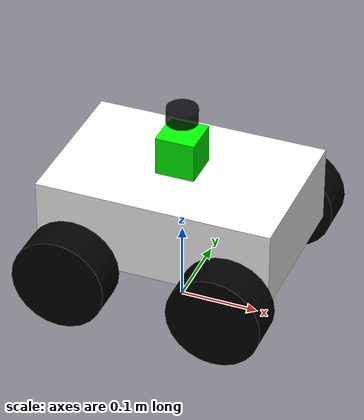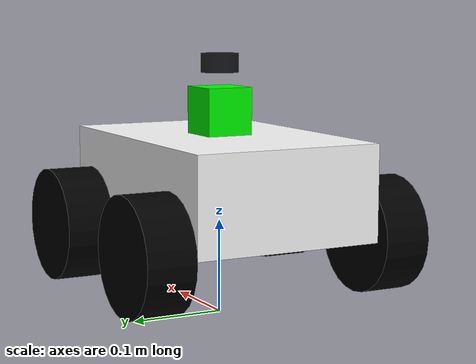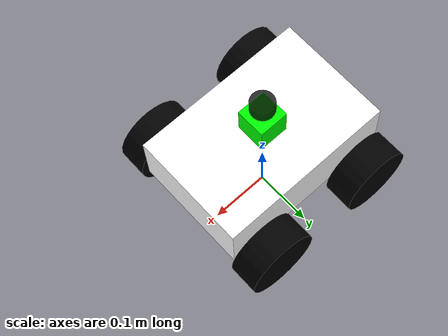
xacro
<?xml version="1.0"?>

<robot name="robot" xmlns:xacro="http://www.ros.org/wiki/xacro">
    <xacro:include filename="$(find lft_simulation)/urdf/common_inertia.xacro" />
    <xacro:include filename="$(find lft_simulation)/urdf/plugins/gazebo_sensor_plugin.xacro" />

    <xacro:gazebo_sensor_plugin />

    <xacro:property name="length_wheel" value="0.05" />
    <xacro:property name="radius_wheel" value="0.06" />
    <xacro:property name="PI" value="3.1415926"/>
    <xacro:macro name="default_inertial" params="mass">
        <inertial>
            <mass value="${mass}" />
            <inertia ixx="0.01" ixy="0.0" ixz="0.0"
                    iyy="0.01" iyz="0.0" izz="0.01" />
        </inertial>
    </xacro:macro>

    <link name="base_footprint" />

    <joint name="base_joint" type="fixed">
        <parent link="base_footprint" />
        <child link="base_link" />
        <origin xyz="0.0 0.0 0.0919" rpy="0 0 0" />
    </joint>

    <link name="base_link">
        <visual>
            <geometry>
                <box size="0.2 .3 .1"/>
            </geometry>
            <origin rpy="0 0 ${PI/2}" xyz="0 0 0.05"/>
            <material name="white">
                <color rgba="1 1 1 1"/>
            </material>
        </visual>
        <collision>
            <geometry>
                <box size="0.2 .3 0.1"/>
            </geometry>
            <origin rpy="0 0 ${PI/2}" xyz="0 0 0.05"/>
        </collision>
        <xacro:default_inertial mass="8.2"/>
    </link>

    <link name="wheel_1">
        <visual>
            <geometry>
                <cylinder length="${length_wheel}" radius="${radius_wheel}"/>
            </geometry>
            <origin rpy="0 0 0" xyz="0 0 0"/>
            <material name="black">
                <color rgba="0 0 0 1"/>
            </material>
        </visual>
        <collision>
            <geometry>
                <cylinder length="${length_wheel}" radius="${radius_wheel}"/>
            </geometry>
        </collision>
        <mu1>0.5</mu1>
        <mu2>0.5</mu2>
        <xacro:default_inertial mass="0.5"/>
    </link>

    <link name="wheel_2">
        <visual>
            <geometry>
                <cylinder length="${length_wheel}" radius="${radius_wheel}"/>
            </geometry>
            <origin rpy="0 0 0" xyz="0 0 0"/>
            <material name="black"/>
        </visual>
        <collision>
            <geometry>
                <cylinder length="${length_wheel}" radius="${radius_wheel}"/>
            </geometry>
        </collision>
        <mu1>0.5</mu1>
        <mu2>0.5</mu2>
        <xacro:default_inertial mass="0.5"/>
    </link>

    <link name="wheel_3">
        <visual>
            <geometry>
                <cylinder length="${length_wheel}" radius="${radius_wheel}"/>
            </geometry>
            <origin rpy="0 0 0" xyz="0 0 0"/>
            <material name="black"/>
        </visual>
        <collision>
            <geometry>
                <cylinder length="${length_wheel}" radius="${radius_wheel}"/>
            </geometry>
        </collision>
        <mu1>0.5</mu1>
        <mu2>0.5</mu2>
        <xacro:default_inertial mass="0.5"/>
    </link>

    <link name="wheel_4">
        <visual>
            <geometry>
                <cylinder length="${length_wheel}" radius="${radius_wheel}"/>
            </geometry>
            <origin rpy="0 0 0" xyz="0 0 0" />
            <material name="black"/>
        </visual>
        <collision>
            <geometry>
                <cylinder length="${length_wheel}" radius="${radius_wheel}"/>
            </geometry>
        </collision>
        <mu1>0.5</mu1>
        <mu2>0.5</mu2>
        <xacro:default_inertial mass="0.5"/>
    </link>

    <joint name="base_to_wheel1" type="continuous">
        <parent link="base_link"/>
        <child link="wheel_1"/>
        <origin rpy="${-PI/2} 0 0" xyz="0.1 0.13 0"/>
        <axis xyz="0 0 1" />
    </joint>

    <joint name="base_to_wheel2" type="continuous">
        <axis xyz="0 0 1" />
        <anchor xyz="0 0 0" />
        <limit effort="100" velocity="100" />
        <parent link="base_link"/>
        <child link="wheel_2"/>
        <origin rpy="${-PI/2} 0 0" xyz="-0.1 0.13 0"/>
    </joint>

    <joint name="base_to_wheel3" type="continuous">
        <parent link="base_link"/>
        <axis xyz="0 0 1" />
        <child link="wheel_3"/>
        <origin rpy="${-PI/2} 0 0" xyz="0.1 -0.13 0"/>
    </joint>

    <joint name="base_to_wheel4" type="continuous">
        <parent link="base_link"/>
        <axis xyz="0 0 1" />
        <child link="wheel_4"/>
        <origin rpy="${-PI/2} 0 0" xyz="-0.1 -0.13 0"/>
    </joint>

    <!-- IMU joint -->
    <joint name="imu_joint" type="fixed">
        <axis xyz="0 1 0" />
        <origin xyz="0 0 0.125" rpy="0 0 0"/>
        <parent link="base_link"/>
        <child link="imu_link"/>
    </joint>

    <!-- IMU -->
    <link name="imu_link">
        <collision>
            <origin xyz="0 0 0" rpy="0 0 0"/>
            <geometry>
                <box size="0.05 0.05 0.05"/>
            </geometry>
        </collision>

        <visual>
            <origin xyz="0 0 0" rpy="0 0 0"/>
            <geometry>
                <box size="0.05 0.05 0.05"/>
            </geometry>
            <material name="green">
                <color rgba="0 1 0 1"/>
            </material>
        </visual>

        <inertial>
            <mass value="1e-2" />
            <origin xyz="0 0 0" rpy="0 0 0"/>
            <inertia ixx="1e-6" ixy="0" ixz="0" iyy="1e-6" iyz="0" izz="1e-6" />
        </inertial>
    </link>

    <!-- gazebo插件设置相关 -->

    <gazebo reference="base_link">
        <material>Gazebo/Orange</material>
    </gazebo>

    <gazebo reference="wheel_1">
        <material>Gazebo/Red</material>
    </gazebo>

    <gazebo reference="wheel_2">
        <material>Gazebo/Black</material>
    </gazebo>

    <gazebo reference="wheel_3">
        <material>Gazebo/Red</material>
    </gazebo>

    <gazebo reference="wheel_4">
        <material>Gazebo/Black</material>
    </gazebo>

    <!-- Drive controller -->
    <gazebo>
        <plugin name="mecanum_controller" filename="libgazebo_ros_planar_move.so">
            <ros>
                <remapping>cmd_vel:=/cmd_vel</remapping>
                <remapping>odom:=/odom</remapping>
            </ros>

            <update_rate>100</update_rate>
            <publish_rate>100</publish_rate>

            <publish_odom>true</publish_odom>
            <publish_odom_tf>true</publish_odom_tf>

            <leftFrontJoint>base_to_wheel1</leftFrontJoint>
            <rightFrontJoint>base_to_wheel3</rightFrontJoint>
            <leftRearJoint>base_to_wheel2</leftRearJoint>
            <rightRearJoint>base_to_wheel4</rightRearJoint>
            <wheelSeparation>0.26</wheelSeparation>
            <wheelDiameter>0.12</wheelDiameter>
        </plugin>
    </gazebo>

    <!-- imu控制 -->
    <gazebo reference="imu_link">
        <material>Gazebo/Orange</material>
        <gravity>true</gravity>
        <sensor name="imu_sensor" type="imu">
            <always_on>true</always_on>
            <update_rate>100</update_rate>
            <visualize>true</visualize>
            <topic>__default_topic__</topic>
            <plugin filename="libgazebo_ros_imu_sensor.so" name="imu_plugin">
                <topicName>/imu</topicName>
                <bodyName>imu_link</bodyName>
                <updateRateHZ>100.0</updateRateHZ>
                <gaussianNoise>0.0</gaussianNoise>
                <xyzOffset>0 0 0</xyzOffset>
                <rpyOffset>0 0 0</rpyOffset>
                <frameName>imu_link</frameName>
                <serviceName>default_service</serviceName>
                <alwaysOn>true</alwaysOn>
                <maxAngularVelocity>100.0</maxAngularVelocity>
                <noiseDensity>0.0</noiseDensity>
                <randomWalk>0.0</randomWalk>
                <ros>
                    <remapping>~/out:=/imu</remapping>
                </ros>
            </plugin>
        </sensor>
    </gazebo>

    <!-- Livox-Mid360  -->

    <!-- Lidar -->
    <link name="laser_link">
        <visual>
            <origin xyz="0 0 0" rpy="0 0 0" />
            <geometry>
                <cylinder length="0.02" radius="0.02" />
            </geometry>
            <material name="black">
                <color rgba="0.0 0.0 0.0 0.8" />
            </material>
        </visual>
        <collision>
            <origin xyz="0 0 0" rpy="0 0 0" />
            <geometry>
                <cylinder length="0.02" radius="0.02" />
            </geometry>
            <material name="black">
                <color rgba="0.0 0.0 0.0 0.8" />
            </material>
        </collision>
        <xacro:cylinder_inertia m="0.03" r="0.02" h="0.02" />

    </link>

    <joint name="laser_joint" type="fixed">
        <parent link="base_link" />
        <child link="laser_link" />
        <origin xyz="0 0 0.175" />
    </joint>

</robot>
